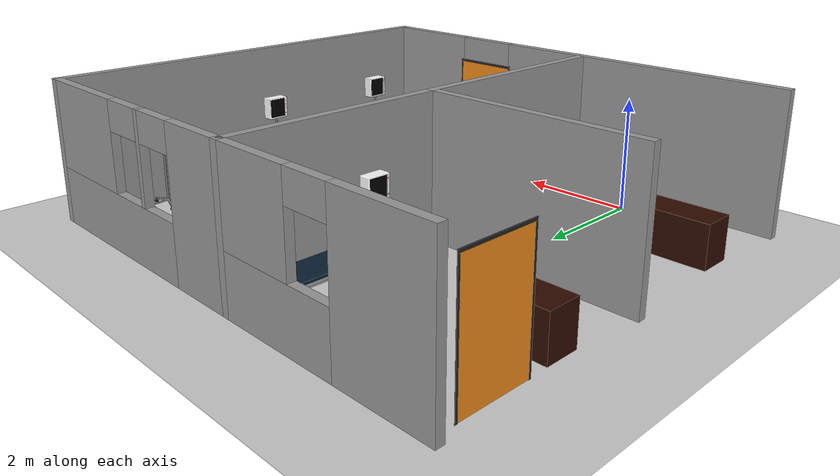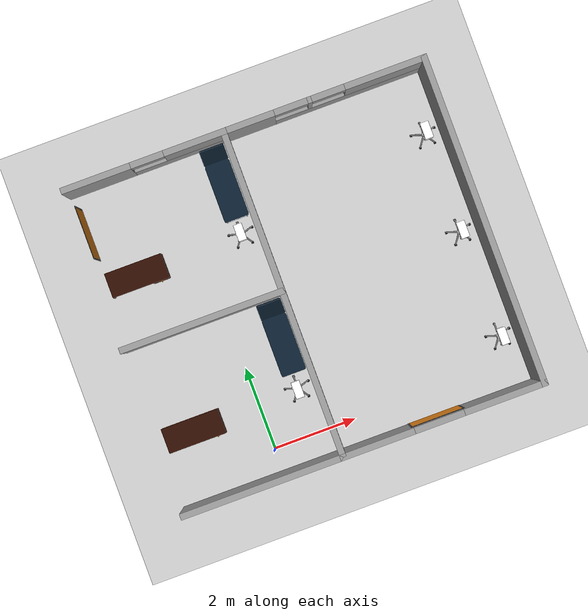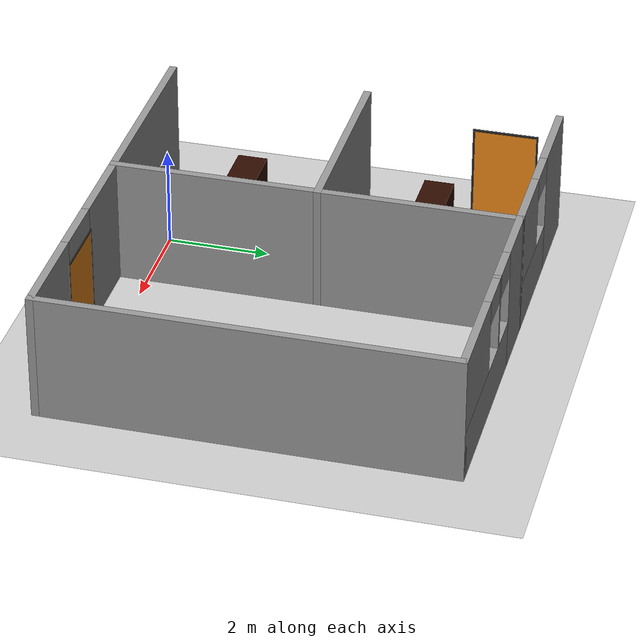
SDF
<sdf version="1.6">
 <world name="default">
  <model name="ground_plane">
   <static>1</static>
   <link name="link">
    <collision name="collision">
     <geometry><plane><normal>0 0 1</normal><size>100 100</size></plane></geometry>
     <surface><friction><ode><mu>100</mu><mu2>50</mu2></ode></friction></surface>
    </collision>
    <visual name="visual">
     <cast_shadows>0</cast_shadows>
     <geometry><plane><normal>0 0 1</normal><size>100 100</size></plane></geometry>
     <material>
      <script><uri>file://media/materials/scripts/gazebo.material</uri><name>Gazebo/Grey</name></script>
     </material>
    </visual>
   </link>
  </model>
  <model name="vitals_monitor_clone_2_clone_1">
   <static>1</static>
   <link name="vitals_monitor">
    <collision name="vitals_monitor">
     <geometry><mesh><uri>model://vitals_monitor/meshes/model.dae</uri></mesh></geometry>
    </collision>
    <visual name="vitals_monitor_mesh">
     <geometry><mesh><uri>model://vitals_monitor/meshes/model.dae</uri></mesh></geometry>
    </visual>
   </link>
   <pose>5.84678 0.669607 0 0 0 -1.5708</pose>
  </model>
  <model name="vitals_monitor_clone_2_clone_2">
   <static>1</static>
   <link name="vitals_monitor">
    <collision name="vitals_monitor">
     <geometry><mesh><uri>model://vitals_monitor/meshes/model.dae</uri></mesh></geometry>
    </collision>
    <visual name="vitals_monitor_mesh">
     <geometry><mesh><uri>model://vitals_monitor/meshes/model.dae</uri></mesh></geometry>
    </visual>
   </link>
   <pose>5.82137 3.28498 0 0 0 -1.5708</pose>
  </model>
  <model name="vitals_monitor_clone_2_clone_3">
   <static>1</static>
   <link name="vitals_monitor">
    <collision name="vitals_monitor">
     <geometry><mesh><uri>model://vitals_monitor/meshes/model.dae</uri></mesh></geometry>
    </collision>
    <visual name="vitals_monitor_mesh">
     <geometry><mesh><uri>model://vitals_monitor/meshes/model.dae</uri></mesh></geometry>
    </visual>
   </link>
   <pose>5.83292 5.71579 0 0 0 -1.5708</pose>
  </model>
  <model name="three_drawer_desk">
   <static>1</static>
   <link name="three_drawer_desk">
    <collision name="three_drawer_desk">
     <geometry><mesh><uri>model://three_drawer_desk/meshes/model.dae</uri></mesh></geometry>
    </collision>
    <visual name="three_drawer_desk_mesh">
     <geometry><mesh><uri>model://three_drawer_desk/meshes/model.dae</uri></mesh></geometry>
    </visual>
   </link>
   <pose>-1.618 4.9115 0 0 -0 3.14159</pose>
  </model>
  <model name="three_drawer_desk_clone">
   <static>1</static>
   <link name="three_drawer_desk">
    <collision name="three_drawer_desk">
     <geometry><mesh><uri>model://three_drawer_desk/meshes/model.dae</uri></mesh></geometry>
    </collision>
    <visual name="three_drawer_desk_mesh">
     <geometry><mesh><uri>model://three_drawer_desk/meshes/model.dae</uri></mesh></geometry>
    </visual>
   </link>
   <pose>-1.62836 1.05851 0 0 -0 3.14159</pose>
  </model>
  <model name="medical_couch">
   <static>1</static>
   <link name="medical_couch">
    <collision name="medical_couch">
     <geometry><mesh><uri>model://medical_couch/meshes/model.dae</uri></mesh></geometry>
    </collision>
    <visual name="medical_couch_mesh">
     <geometry><mesh><uri>model://medical_couch/meshes/model.dae</uri></mesh></geometry>
    </visual>
   </link>
   <pose>1.03141 6.05659 0 0 -0 3.14159</pose>
  </model>
  <model name="medical_couch_clone">
   <static>1</static>
   <link name="medical_couch">
    <collision name="medical_couch">
     <geometry><mesh><uri>model://medical_couch/meshes/model.dae</uri></mesh></geometry>
    </collision>
    <visual name="medical_couch_mesh">
     <geometry><mesh><uri>model://medical_couch/meshes/model.dae</uri></mesh></geometry>
    </visual>
   </link>
   <pose>1.03641 2.21268 0 0 -0 3.14159</pose>
  </model>
  <model name="vitals_monitor_clone_2_clone_3_clone">
   <static>1</static>
   <link name="vitals_monitor">
    <collision name="vitals_monitor">
     <geometry><mesh><uri>model://vitals_monitor/meshes/model.dae</uri></mesh></geometry>
    </collision>
    <visual name="vitals_monitor_mesh">
     <geometry><mesh><uri>model://vitals_monitor/meshes/model.dae</uri></mesh></geometry>
    </visual>
   </link>
   <pose>0.995211 4.99575 0 0 0 -1.5708</pose>
  </model>
  <model name="vitals_monitor_clone_2_clone_3_clone_0">
   <static>1</static>
   <link name="vitals_monitor">
    <collision name="vitals_monitor">
     <geometry><mesh><uri>model://vitals_monitor/meshes/model.dae</uri></mesh></geometry>
    </collision>
    <visual name="vitals_monitor_mesh">
     <geometry><mesh><uri>model://vitals_monitor/meshes/model.dae</uri></mesh></geometry>
    </visual>
   </link>
   <pose>0.989105 1.14447 0 0 0 -1.5708</pose>
  </model>
  <model name="room_door_clone">
   <link name="base_link">
    <inertial>
     <pose>0 0 1.00051 0 -0 0</pose>
     <mass>2001</mass>
     <inertia><ixx>797.85</ixx><ixy>0</ixy><ixz>0</ixz><iyy>4.0501</iyy><iyz>0</iyz><izz>796.8</izz></inertia>
    </inertial>
    <collision name="base_link_fixed_joint_lump__top_post_collision">
     <pose>0 0 2.025 0 -0 0</pose>
     <geometry><box><size>0.01 1.3 0.05</size></box></geometry>
    </collision>
    <collision name="base_link_fixed_joint_lump__left_post_collision_1">
     <pose>0 -0.63 1 0 -0 0</pose>
     <geometry><box><size>0.01 0.04 2</size></box></geometry>
    </collision>
    <collision name="base_link_fixed_joint_lump__right_post_collision_2">
     <pose>0 0.63 1 0 -0 0</pose>
     <geometry><box><size>0.01 0.04 2</size></box></geometry>
    </collision>
    <visual name="base_link_fixed_joint_lump__top_post_visual">
     <pose>0 0 2.025 0 -0 0</pose>
     <geometry><box><size>0.01 1.3 0.05</size></box></geometry>
     <material>
      <script><name>Gazebo/Black</name><uri>file://media/materials/scripts/gazebo.material</uri></script>
     </material>
    </visual>
    <visual name="base_link_fixed_joint_lump__left_post_visual_1">
     <pose>0 -0.63 1 0 -0 0</pose>
     <geometry><box><size>0.01 0.04 2</size></box></geometry>
     <material>
      <script><name>Gazebo/Black</name><uri>file://media/materials/scripts/gazebo.material</uri></script>
     </material>
    </visual>
    <visual name="base_link_fixed_joint_lump__right_post_visual_2">
     <pose>0 0.63 1 0 -0 0</pose>
     <geometry><box><size>0.01 0.04 2</size></box></geometry>
     <material>
      <script><name>Gazebo/Black</name><uri>file://media/materials/scripts/gazebo.material</uri></script>
     </material>
    </visual>
   </link>
   <link name="door_front">
    <pose>0.005 0.61 1 0 -0 0</pose>
    <inertial>
     <mass>1</mass>
     <inertia><ixx>1</ixx><ixy>0</ixy><ixz>0</ixz><iyy>1</iyy><iyz>0</iyz><izz>1</izz></inertia>
    </inertial>
    <collision name="door_front_collision">
     <pose>-0.005 -0.61 0.005 0 -0 0</pose>
     <geometry><box><size>0.01 1.22 1.99</size></box></geometry>
    </collision>
    <visual name="door_front_visual">
     <pose>-0.005 -0.61 0.005 0 -0 0</pose>
     <geometry><box><size>0.01 1.22 1.99</size></box></geometry>
     <material>
      <script><name>Gazebo/Orange</name><uri>file://media/materials/scripts/gazebo.material</uri></script>
     </material>
    </visual>
   </link>
   <joint name="door_front_to_right_post" type="revolute">
    <child>door_front</child>
    <parent>base_link</parent>
    <axis>
     <xyz>0 0 1</xyz>
     <limit><lower>0</lower><upper>3.14</upper><effort>1000</effort><velocity>100</velocity></limit>
     <dynamics>
      <damping>0.5</damping>
      <friction>0</friction>
      <spring_reference>0</spring_reference>
      <spring_stiffness>0</spring_stiffness>
     </dynamics>
     <use_parent_model_frame>0</use_parent_model_frame>
    </axis>
   </joint>
   <pose>-2.33298 6.2017 -3e-06 -5e-06 1e-06 -0.000148</pose>
  </model>
  <model name="room_door_3_clone_clone_0_clone_0">
   <link name="base_link">
    <inertial>
     <pose>0 0 1.00051 0 -0 0</pose>
     <mass>2001</mass>
     <inertia><ixx>797.85</ixx><ixy>0</ixy><ixz>0</ixz><iyy>4.0501</iyy><iyz>0</iyz><izz>796.8</izz></inertia>
    </inertial>
    <collision name="base_link_fixed_joint_lump__top_post_collision">
     <pose>0 0 2.025 0 -0 0</pose>
     <geometry><box><size>0.01 1.3 0.05</size></box></geometry>
    </collision>
    <collision name="base_link_fixed_joint_lump__left_post_collision_1">
     <pose>0 -0.63 1 0 -0 0</pose>
     <geometry><box><size>0.01 0.04 2</size></box></geometry>
    </collision>
    <collision name="base_link_fixed_joint_lump__right_post_collision_2">
     <pose>0 0.63 1 0 -0 0</pose>
     <geometry><box><size>0.01 0.04 2</size></box></geometry>
    </collision>
    <visual name="base_link_fixed_joint_lump__top_post_visual">
     <pose>0 0 2.025 0 -0 0</pose>
     <geometry><box><size>0.01 1.3 0.05</size></box></geometry>
     <material>
      <script><name>Gazebo/Black</name><uri>file://media/materials/scripts/gazebo.material</uri></script>
     </material>
    </visual>
    <visual name="base_link_fixed_joint_lump__left_post_visual_1">
     <pose>0 -0.63 1 0 -0 0</pose>
     <geometry><box><size>0.01 0.04 2</size></box></geometry>
     <material>
      <script><name>Gazebo/Black</name><uri>file://media/materials/scripts/gazebo.material</uri></script>
     </material>
    </visual>
    <visual name="base_link_fixed_joint_lump__right_post_visual_2">
     <pose>0 0.63 1 0 -0 0</pose>
     <geometry><box><size>0.01 0.04 2</size></box></geometry>
     <material>
      <script><name>Gazebo/Black</name><uri>file://media/materials/scripts/gazebo.material</uri></script>
     </material>
    </visual>
   </link>
   <link name="door_front">
    <pose>0.005 -0.61 1 0 -0 0</pose>
    <inertial>
     <mass>1</mass>
     <inertia><ixx>1</ixx><ixy>0</ixy><ixz>0</ixz><iyy>1</iyy><iyz>0</iyz><izz>1</izz></inertia>
    </inertial>
    <collision name="door_front_collision">
     <pose>-0.005 0.61 0.005 0 -0 0</pose>
     <geometry><box><size>0.01 1.22 1.99</size></box></geometry>
    </collision>
    <visual name="door_front_visual">
     <pose>-0.005 0.61 0.005 0 -0 0</pose>
     <geometry><box><size>0.01 1.22 1.99</size></box></geometry>
     <material>
      <script><name>Gazebo/Orange</name><uri>file://media/materials/scripts/gazebo.material</uri></script>
     </material>
    </visual>
   </link>
   <joint name="door_front_to_left_post" type="revolute">
    <child>door_front</child>
    <parent>base_link</parent>
    <axis>
     <xyz>0 0 1</xyz>
     <limit><lower>-3.14</lower><upper>0</upper><effort>1000</effort><velocity>100</velocity></limit>
     <dynamics>
      <damping>0.5</damping>
      <friction>0</friction>
      <spring_reference>0</spring_reference>
      <spring_stiffness>0</spring_stiffness>
     </dynamics>
     <use_parent_model_frame>0</use_parent_model_frame>
    </axis>
   </joint>
   <pose>3.76836 -0.540279 -1e-06 1e-06 -1e-06 1.57084</pose>
  </model>
  <model name="hospital_walls">
   <link name="Wall_10">
    <pose>1.425 5.35 0 0 0 -1.5708</pose>
    <visual name="Wall_10_Visual">
     <pose>0 0 1.25 0 -0 0</pose>
     <geometry><box><size>4 0.15 2.5</size></box></geometry>
     <material>
      <script><uri>file://media/materials/scripts/gazebo.material</uri><name>Gazebo/Grey</name></script>
      <ambient>1 1 1 1</ambient>
      <shader type="pixel"/>
     </material>
     <meta><layer>0</layer></meta>
    </visual>
    <collision name="Wall_10_Collision">
     <pose>0 0 1.25 0 -0 0</pose>
     <geometry><box><size>4 0.15 2.5</size></box></geometry>
     <surface>
      <friction>
       <ode><mu>1</mu><mu2>1</mu2><fdir1>0 0 0</fdir1><slip1>0</slip1><slip2>0</slip2></ode>
       <torsional>
        <coefficient>1</coefficient>
        <patch_radius>0</patch_radius>
        <surface_radius>0</surface_radius>
        <use_patch_radius>1</use_patch_radius>
        <ode><slip>0</slip></ode>
       </torsional>
      </friction>
      <bounce><restitution_coefficient>0</restitution_coefficient><threshold>1e+06</threshold></bounce>
      <contact>
       <collide_without_contact>0</collide_without_contact>
       <collide_without_contact_bitmask>1</collide_without_contact_bitmask>
       <collide_bitmask>1</collide_bitmask>
       <ode>
        <soft_cfm>0</soft_cfm>
        <soft_erp>0.2</soft_erp>
        <kp>1e+13</kp>
        <kd>1</kd>
        <max_vel>0.01</max_vel>
        <min_depth>0</min_depth>
       </ode>
       <bullet>
        <split_impulse>1</split_impulse>
        <split_impulse_penetration_threshold>-0.01</split_impulse_penetration_threshold>
        <soft_cfm>0</soft_cfm>
        <soft_erp>0.2</soft_erp>
        <kp>1e+13</kp>
        <kd>1</kd>
       </bullet>
      </contact>
     </surface>
    </collision>
   </link>
   <link name="Wall_11">
    <pose>-0.5 3.425 0 0 -0 3.14159</pose>
    <visual name="Wall_11_Visual">
     <pose>0 0 1.25 0 -0 0</pose>
     <geometry><box><size>4 0.15 2.5</size></box></geometry>
     <material>
      <script><uri>file://media/materials/scripts/gazebo.material</uri><name>Gazebo/Grey</name></script>
      <ambient>1 1 1 1</ambient>
      <shader type="pixel"/>
     </material>
     <meta><layer>0</layer></meta>
    </visual>
    <collision name="Wall_11_Collision">
     <pose>0 0 1.25 0 -0 0</pose>
     <geometry><box><size>4 0.15 2.5</size></box></geometry>
     <surface>
      <friction>
       <ode><mu>1</mu><mu2>1</mu2><fdir1>0 0 0</fdir1><slip1>0</slip1><slip2>0</slip2></ode>
       <torsional>
        <coefficient>1</coefficient>
        <patch_radius>0</patch_radius>
        <surface_radius>0</surface_radius>
        <use_patch_radius>1</use_patch_radius>
        <ode><slip>0</slip></ode>
       </torsional>
      </friction>
      <bounce><restitution_coefficient>0</restitution_coefficient><threshold>1e+06</threshold></bounce>
      <contact>
       <collide_without_contact>0</collide_without_contact>
       <collide_without_contact_bitmask>1</collide_without_contact_bitmask>
       <collide_bitmask>1</collide_bitmask>
       <ode>
        <soft_cfm>0</soft_cfm>
        <soft_erp>0.2</soft_erp>
        <kp>1e+13</kp>
        <kd>1</kd>
        <max_vel>0.01</max_vel>
        <min_depth>0</min_depth>
       </ode>
       <bullet>
        <split_impulse>1</split_impulse>
        <split_impulse_penetration_threshold>-0.01</split_impulse_penetration_threshold>
        <soft_cfm>0</soft_cfm>
        <soft_erp>0.2</soft_erp>
        <kp>1e+13</kp>
        <kd>1</kd>
       </bullet>
      </contact>
     </surface>
    </collision>
   </link>
   <link name="Wall_15">
    <pose>3.85 7.275 0 0 -0 0</pose>
    <inertial>
     <mass>1</mass>
     <inertia><ixx>1</ixx><ixy>0</ixy><ixz>0</ixz><iyy>1</iyy><iyz>0</iyz><izz>1</izz></inertia>
    </inertial>
    <visual name="Wall_15_Visual_5">
     <pose>0.1 0 2.25 0 -0 0</pose>
     <geometry><box><size>0.8 0.15 0.5</size></box></geometry>
     <material>
      <script><uri>file://media/materials/scripts/gazebo.material</uri><name>Gazebo/Grey</name></script>
      <ambient>1 1 1 1</ambient>
      <shader type="vertex"><normal_map>__default__</normal_map></shader>
      <diffuse>0.7 0.7 0.7 1</diffuse>
      <specular>0.01 0.01 0.01 1</specular>
      <emissive>0 0 0 1</emissive>
     </material>
     <meta><layer>0</layer></meta>
    </visual>
    <visual name="Wall_15_Visual_4">
     <pose>-0.8 0 2.25 0 -0 0</pose>
     <geometry><box><size>0.8 0.15 0.5</size></box></geometry>
     <material>
      <script><uri>file://media/materials/scripts/gazebo.material</uri><name>Gazebo/Grey</name></script>
      <ambient>1 1 1 1</ambient>
      <shader type="vertex"><normal_map>__default__</normal_map></shader>
      <diffuse>0.7 0.7 0.7 1</diffuse>
      <specular>0.01 0.01 0.01 1</specular>
      <emissive>0 0 0 1</emissive>
     </material>
     <meta><layer>0</layer></meta>
    </visual>
    <visual name="Wall_15_Visual_0">
     <pose>-1.85 0 1.25 0 -0 0</pose>
     <geometry><box><size>1.3 0.15 2.5</size></box></geometry>
     <material>
      <script><uri>file://media/materials/scripts/gazebo.material</uri><name>Gazebo/Grey</name></script>
      <ambient>1 1 1 1</ambient>
      <shader type="vertex"><normal_map>__default__</normal_map></shader>
      <diffuse>0.7 0.7 0.7 1</diffuse>
      <specular>0.01 0.01 0.01 1</specular>
      <emissive>0 0 0 1</emissive>
     </material>
     <meta><layer>0</layer></meta>
    </visual>
    <visual name="Wall_15_Visual_1">
     <pose>0.65 0 0.5 0 -0 0</pose>
     <geometry><box><size>3.7 0.15 1</size></box></geometry>
     <material>
      <script><uri>file://media/materials/scripts/gazebo.material</uri><name>Gazebo/Grey</name></script>
      <ambient>1 1 1 1</ambient>
      <shader type="vertex"><normal_map>__default__</normal_map></shader>
      <diffuse>0.7 0.7 0.7 1</diffuse>
      <specular>0.01 0.01 0.01 1</specular>
      <emissive>0 0 0 1</emissive>
     </material>
     <meta><layer>0</layer></meta>
    </visual>
    <visual name="Wall_15_Visual_2">
     <pose>-0.35 0 1.75 0 -0 0</pose>
     <geometry><box><size>0.1 0.15 1.5</size></box></geometry>
     <material>
      <script><uri>file://media/materials/scripts/gazebo.material</uri><name>Gazebo/Grey</name></script>
      <ambient>1 1 1 1</ambient>
      <shader type="vertex"><normal_map>__default__</normal_map></shader>
      <diffuse>0.7 0.7 0.7 1</diffuse>
      <specular>0.01 0.01 0.01 1</specular>
      <emissive>0 0 0 1</emissive>
     </material>
     <meta><layer>0</layer></meta>
    </visual>
    <visual name="Wall_15_Visual_3">
     <pose>1.5 0 1.75 0 -0 0</pose>
     <geometry><box><size>2 0.15 1.5</size></box></geometry>
     <material>
      <script><uri>file://media/materials/scripts/gazebo.material</uri><name>Gazebo/Grey</name></script>
      <ambient>1 1 1 1</ambient>
      <shader type="vertex"><normal_map>__default__</normal_map></shader>
      <diffuse>0.7 0.7 0.7 1</diffuse>
      <specular>0.01 0.01 0.01 1</specular>
      <emissive>0 0 0 1</emissive>
     </material>
     <meta><layer>0</layer></meta>
    </visual>
    <collision name="Wall_15_Collision_1">
     <pose>0.65 0 0.5 0 -0 0</pose>
     <geometry><box><size>3.7 0.15 1</size></box></geometry>
     <surface>
      <friction>
       <ode><mu>1</mu><mu2>1</mu2><fdir1>0 0 0</fdir1><slip1>0</slip1><slip2>0</slip2></ode>
       <torsional>
        <coefficient>1</coefficient>
        <patch_radius>0</patch_radius>
        <surface_radius>0</surface_radius>
        <use_patch_radius>1</use_patch_radius>
        <ode><slip>0</slip></ode>
       </torsional>
      </friction>
      <bounce><restitution_coefficient>0</restitution_coefficient><threshold>1e+06</threshold></bounce>
      <contact>
       <collide_without_contact>0</collide_without_contact>
       <collide_without_contact_bitmask>1</collide_without_contact_bitmask>
       <collide_bitmask>1</collide_bitmask>
       <ode>
        <soft_cfm>0</soft_cfm>
        <soft_erp>0.2</soft_erp>
        <kp>1e+13</kp>
        <kd>1</kd>
        <max_vel>0.01</max_vel>
        <min_depth>0</min_depth>
       </ode>
       <bullet>
        <split_impulse>1</split_impulse>
        <split_impulse_penetration_threshold>-0.01</split_impulse_penetration_threshold>
        <soft_cfm>0</soft_cfm>
        <soft_erp>0.2</soft_erp>
        <kp>1e+13</kp>
        <kd>1</kd>
       </bullet>
      </contact>
     </surface>
    </collision>
    <collision name="Wall_15_Collision_3">
     <pose>1.5 0 1.75 0 -0 0</pose>
     <geometry><box><size>2 0.15 1.5</size></box></geometry>
     <surface>
      <friction>
       <ode><mu>1</mu><mu2>1</mu2><fdir1>0 0 0</fdir1><slip1>0</slip1><slip2>0</slip2></ode>
       <torsional>
        <coefficient>1</coefficient>
        <patch_radius>0</patch_radius>
        <surface_radius>0</surface_radius>
        <use_patch_radius>1</use_patch_radius>
        <ode><slip>0</slip></ode>
       </torsional>
      </friction>
      <bounce><restitution_coefficient>0</restitution_coefficient><threshold>1e+06</threshold></bounce>
      <contact>
       <collide_without_contact>0</collide_without_contact>
       <collide_without_contact_bitmask>1</collide_without_contact_bitmask>
       <collide_bitmask>1</collide_bitmask>
       <ode>
        <soft_cfm>0</soft_cfm>
        <soft_erp>0.2</soft_erp>
        <kp>1e+13</kp>
        <kd>1</kd>
        <max_vel>0.01</max_vel>
        <min_depth>0</min_depth>
       </ode>
       <bullet>
        <split_impulse>1</split_impulse>
        <split_impulse_penetration_threshold>-0.01</split_impulse_penetration_threshold>
        <soft_cfm>0</soft_cfm>
        <soft_erp>0.2</soft_erp>
        <kp>1e+13</kp>
        <kd>1</kd>
       </bullet>
      </contact>
     </surface>
    </collision>
    <collision name="Wall_15_Collision_0">
     <pose>-1.85 0 1.25 0 -0 0</pose>
     <geometry><box><size>1.3 0.15 2.5</size></box></geometry>
     <surface>
      <friction>
       <ode><mu>1</mu><mu2>1</mu2><fdir1>0 0 0</fdir1><slip1>0</slip1><slip2>0</slip2></ode>
       <torsional>
        <coefficient>1</coefficient>
        <patch_radius>0</patch_radius>
        <surface_radius>0</surface_radius>
        <use_patch_radius>1</use_patch_radius>
        <ode><slip>0</slip></ode>
       </torsional>
      </friction>
      <bounce><restitution_coefficient>0</restitution_coefficient><threshold>1e+06</threshold></bounce>
      <contact>
       <collide_without_contact>0</collide_without_contact>
       <collide_without_contact_bitmask>1</collide_without_contact_bitmask>
       <collide_bitmask>1</collide_bitmask>
       <ode>
        <soft_cfm>0</soft_cfm>
        <soft_erp>0.2</soft_erp>
        <kp>1e+13</kp>
        <kd>1</kd>
        <max_vel>0.01</max_vel>
        <min_depth>0</min_depth>
       </ode>
       <bullet>
        <split_impulse>1</split_impulse>
        <split_impulse_penetration_threshold>-0.01</split_impulse_penetration_threshold>
        <soft_cfm>0</soft_cfm>
        <soft_erp>0.2</soft_erp>
        <kp>1e+13</kp>
        <kd>1</kd>
       </bullet>
      </contact>
     </surface>
    </collision>
    <collision name="Wall_15_Collision_5">
     <pose>0.1 0 2.25 0 -0 0</pose>
     <geometry><box><size>0.8 0.15 0.5</size></box></geometry>
     <surface>
      <friction>
       <ode><mu>1</mu><mu2>1</mu2><fdir1>0 0 0</fdir1><slip1>0</slip1><slip2>0</slip2></ode>
       <torsional>
        <coefficient>1</coefficient>
        <patch_radius>0</patch_radius>
        <surface_radius>0</surface_radius>
        <use_patch_radius>1</use_patch_radius>
        <ode><slip>0</slip></ode>
       </torsional>
      </friction>
      <bounce><restitution_coefficient>0</restitution_coefficient><threshold>1e+06</threshold></bounce>
      <contact>
       <collide_without_contact>0</collide_without_contact>
       <collide_without_contact_bitmask>1</collide_without_contact_bitmask>
       <collide_bitmask>1</collide_bitmask>
       <ode>
        <soft_cfm>0</soft_cfm>
        <soft_erp>0.2</soft_erp>
        <kp>1e+13</kp>
        <kd>1</kd>
        <max_vel>0.01</max_vel>
        <min_depth>0</min_depth>
       </ode>
       <bullet>
        <split_impulse>1</split_impulse>
        <split_impulse_penetration_threshold>-0.01</split_impulse_penetration_threshold>
        <soft_cfm>0</soft_cfm>
        <soft_erp>0.2</soft_erp>
        <kp>1e+13</kp>
        <kd>1</kd>
       </bullet>
      </contact>
     </surface>
    </collision>
    <collision name="Wall_15_Collision_2">
     <pose>-0.35 0 1.75 0 -0 0</pose>
     <geometry><box><size>0.1 0.15 1.5</size></box></geometry>
     <surface>
      <friction>
       <ode><mu>1</mu><mu2>1</mu2><fdir1>0 0 0</fdir1><slip1>0</slip1><slip2>0</slip2></ode>
       <torsional>
        <coefficient>1</coefficient>
        <patch_radius>0</patch_radius>
        <surface_radius>0</surface_radius>
        <use_patch_radius>1</use_patch_radius>
        <ode><slip>0</slip></ode>
       </torsional>
      </friction>
      <bounce><restitution_coefficient>0</restitution_coefficient><threshold>1e+06</threshold></bounce>
      <contact>
       <collide_without_contact>0</collide_without_contact>
       <collide_without_contact_bitmask>1</collide_without_contact_bitmask>
       <collide_bitmask>1</collide_bitmask>
       <ode>
        <soft_cfm>0</soft_cfm>
        <soft_erp>0.2</soft_erp>
        <kp>1e+13</kp>
        <kd>1</kd>
        <max_vel>0.01</max_vel>
        <min_depth>0</min_depth>
       </ode>
       <bullet>
        <split_impulse>1</split_impulse>
        <split_impulse_penetration_threshold>-0.01</split_impulse_penetration_threshold>
        <soft_cfm>0</soft_cfm>
        <soft_erp>0.2</soft_erp>
        <kp>1e+13</kp>
        <kd>1</kd>
       </bullet>
      </contact>
     </surface>
    </collision>
    <collision name="Wall_15_Collision_4">
     <pose>-0.8 0 2.25 0 -0 0</pose>
     <geometry><box><size>0.8 0.15 0.5</size></box></geometry>
     <surface>
      <friction>
       <ode><mu>1</mu><mu2>1</mu2><fdir1>0 0 0</fdir1><slip1>0</slip1><slip2>0</slip2></ode>
       <torsional>
        <coefficient>1</coefficient>
        <patch_radius>0</patch_radius>
        <surface_radius>0</surface_radius>
        <use_patch_radius>1</use_patch_radius>
        <ode><slip>0</slip></ode>
       </torsional>
      </friction>
      <bounce><restitution_coefficient>0</restitution_coefficient><threshold>1e+06</threshold></bounce>
      <contact>
       <collide_without_contact>0</collide_without_contact>
       <collide_without_contact_bitmask>1</collide_without_contact_bitmask>
       <collide_bitmask>1</collide_bitmask>
       <ode>
        <soft_cfm>0</soft_cfm>
        <soft_erp>0.2</soft_erp>
        <kp>1e+13</kp>
        <kd>1</kd>
        <max_vel>0.01</max_vel>
        <min_depth>0</min_depth>
       </ode>
       <bullet>
        <split_impulse>1</split_impulse>
        <split_impulse_penetration_threshold>-0.01</split_impulse_penetration_threshold>
        <soft_cfm>0</soft_cfm>
        <soft_erp>0.2</soft_erp>
        <kp>1e+13</kp>
        <kd>1</kd>
       </bullet>
      </contact>
     </surface>
    </collision>
   </link>
   <link name="Wall_16">
    <pose>6.275 3.35 0 0 0 -1.5708</pose>
    <visual name="Wall_16_Visual">
     <pose>0 0 1.25 0 -0 0</pose>
     <geometry><box><size>8 0.15 2.5</size></box></geometry>
     <material>
      <script><uri>file://media/materials/scripts/gazebo.material</uri><name>Gazebo/Grey</name></script>
      <ambient>1 1 1 1</ambient>
      <shader type="pixel"/>
     </material>
     <meta><layer>0</layer></meta>
    </visual>
    <collision name="Wall_16_Collision">
     <pose>0 0 1.25 0 -0 0</pose>
     <geometry><box><size>8 0.15 2.5</size></box></geometry>
     <surface>
      <friction>
       <ode><mu>1</mu><mu2>1</mu2><fdir1>0 0 0</fdir1><slip1>0</slip1><slip2>0</slip2></ode>
       <torsional>
        <coefficient>1</coefficient>
        <patch_radius>0</patch_radius>
        <surface_radius>0</surface_radius>
        <use_patch_radius>1</use_patch_radius>
        <ode><slip>0</slip></ode>
       </torsional>
      </friction>
      <bounce><restitution_coefficient>0</restitution_coefficient><threshold>1e+06</threshold></bounce>
      <contact>
       <collide_without_contact>0</collide_without_contact>
       <collide_without_contact_bitmask>1</collide_without_contact_bitmask>
       <collide_bitmask>1</collide_bitmask>
       <ode>
        <soft_cfm>0</soft_cfm>
        <soft_erp>0.2</soft_erp>
        <kp>1e+13</kp>
        <kd>1</kd>
        <max_vel>0.01</max_vel>
        <min_depth>0</min_depth>
       </ode>
       <bullet>
        <split_impulse>1</split_impulse>
        <split_impulse_penetration_threshold>-0.01</split_impulse_penetration_threshold>
        <soft_cfm>0</soft_cfm>
        <soft_erp>0.2</soft_erp>
        <kp>1e+13</kp>
        <kd>1</kd>
       </bullet>
      </contact>
     </surface>
    </collision>
   </link>
   <link name="Wall_17">
    <pose>3.85 -0.575 0 0 -0 3.14159</pose>
    <visual name="Wall_17_Visual_0">
     <pose>-1.5 0 1.25 0 -0 0</pose>
     <geometry><box><size>2 0.15 2.5</size></box></geometry>
     <material>
      <script><uri>file://media/materials/scripts/gazebo.material</uri><name>Gazebo/Grey</name></script>
      <ambient>1 1 1 1</ambient>
      <shader type="pixel"/>
     </material>
     <meta><layer>0</layer></meta>
    </visual>
    <visual name="Wall_17_Visual_1">
     <pose>1.6 0 1.25 0 -0 0</pose>
     <geometry><box><size>1.8 0.15 2.5</size></box></geometry>
     <material>
      <script><uri>file://media/materials/scripts/gazebo.material</uri><name>Gazebo/Grey</name></script>
      <ambient>1 1 1 1</ambient>
      <shader type="pixel"/>
     </material>
     <meta><layer>0</layer></meta>
    </visual>
    <visual name="Wall_17_Visual_2">
     <pose>0.1 0 2.25 0 -0 0</pose>
     <geometry><box><size>1.2 0.15 0.5</size></box></geometry>
     <material>
      <script><uri>file://media/materials/scripts/gazebo.material</uri><name>Gazebo/Grey</name></script>
      <ambient>1 1 1 1</ambient>
      <shader type="pixel"/>
     </material>
     <meta><layer>0</layer></meta>
    </visual>
    <collision name="Wall_17_Collision_1">
     <pose>1.6 0 1.25 0 -0 0</pose>
     <geometry><box><size>1.8 0.15 2.5</size></box></geometry>
     <surface>
      <friction>
       <ode><mu>1</mu><mu2>1</mu2><fdir1>0 0 0</fdir1><slip1>0</slip1><slip2>0</slip2></ode>
       <torsional>
        <coefficient>1</coefficient>
        <patch_radius>0</patch_radius>
        <surface_radius>0</surface_radius>
        <use_patch_radius>1</use_patch_radius>
        <ode><slip>0</slip></ode>
       </torsional>
      </friction>
      <bounce><restitution_coefficient>0</restitution_coefficient><threshold>1e+06</threshold></bounce>
      <contact>
       <collide_without_contact>0</collide_without_contact>
       <collide_without_contact_bitmask>1</collide_without_contact_bitmask>
       <collide_bitmask>1</collide_bitmask>
       <ode>
        <soft_cfm>0</soft_cfm>
        <soft_erp>0.2</soft_erp>
        <kp>1e+13</kp>
        <kd>1</kd>
        <max_vel>0.01</max_vel>
        <min_depth>0</min_depth>
       </ode>
       <bullet>
        <split_impulse>1</split_impulse>
        <split_impulse_penetration_threshold>-0.01</split_impulse_penetration_threshold>
        <soft_cfm>0</soft_cfm>
        <soft_erp>0.2</soft_erp>
        <kp>1e+13</kp>
        <kd>1</kd>
       </bullet>
      </contact>
     </surface>
    </collision>
    <collision name="Wall_17_Collision_0">
     <pose>-1.5 0 1.25 0 -0 0</pose>
     <geometry><box><size>2 0.15 2.5</size></box></geometry>
     <surface>
      <friction>
       <ode><mu>1</mu><mu2>1</mu2><fdir1>0 0 0</fdir1><slip1>0</slip1><slip2>0</slip2></ode>
       <torsional>
        <coefficient>1</coefficient>
        <patch_radius>0</patch_radius>
        <surface_radius>0</surface_radius>
        <use_patch_radius>1</use_patch_radius>
        <ode><slip>0</slip></ode>
       </torsional>
      </friction>
      <bounce><restitution_coefficient>0</restitution_coefficient><threshold>1e+06</threshold></bounce>
      <contact>
       <collide_without_contact>0</collide_without_contact>
       <collide_without_contact_bitmask>1</collide_without_contact_bitmask>
       <collide_bitmask>1</collide_bitmask>
       <ode>
        <soft_cfm>0</soft_cfm>
        <soft_erp>0.2</soft_erp>
        <kp>1e+13</kp>
        <kd>1</kd>
        <max_vel>0.01</max_vel>
        <min_depth>0</min_depth>
       </ode>
       <bullet>
        <split_impulse>1</split_impulse>
        <split_impulse_penetration_threshold>-0.01</split_impulse_penetration_threshold>
        <soft_cfm>0</soft_cfm>
        <soft_erp>0.2</soft_erp>
        <kp>1e+13</kp>
        <kd>1</kd>
       </bullet>
      </contact>
     </surface>
    </collision>
    <collision name="Wall_17_Collision_2">
     <pose>0.1 0 2.25 0 -0 0</pose>
     <geometry><box><size>1.2 0.15 0.5</size></box></geometry>
     <surface>
      <friction>
       <ode><mu>1</mu><mu2>1</mu2><fdir1>0 0 0</fdir1><slip1>0</slip1><slip2>0</slip2></ode>
       <torsional>
        <coefficient>1</coefficient>
        <patch_radius>0</patch_radius>
        <surface_radius>0</surface_radius>
        <use_patch_radius>1</use_patch_radius>
        <ode><slip>0</slip></ode>
       </torsional>
      </friction>
      <bounce><restitution_coefficient>0</restitution_coefficient><threshold>1e+06</threshold></bounce>
      <contact>
       <collide_without_contact>0</collide_without_contact>
       <collide_without_contact_bitmask>1</collide_without_contact_bitmask>
       <collide_bitmask>1</collide_bitmask>
       <ode>
        <soft_cfm>0</soft_cfm>
        <soft_erp>0.2</soft_erp>
        <kp>1e+13</kp>
        <kd>1</kd>
        <max_vel>0.01</max_vel>
        <min_depth>0</min_depth>
       </ode>
       <bullet>
        <split_impulse>1</split_impulse>
        <split_impulse_penetration_threshold>-0.01</split_impulse_penetration_threshold>
        <soft_cfm>0</soft_cfm>
        <soft_erp>0.2</soft_erp>
        <kp>1e+13</kp>
        <kd>1</kd>
       </bullet>
      </contact>
     </surface>
    </collision>
   </link>
   <link name="Wall_18">
    <pose>1.425 1.425 0 0 -0 1.5708</pose>
    <visual name="Wall_18_Visual">
     <pose>0 0 1.25 0 -0 0</pose>
     <geometry><box><size>4.15 0.15 2.5</size></box></geometry>
     <material>
      <script><uri>file://media/materials/scripts/gazebo.material</uri><name>Gazebo/Grey</name></script>
      <ambient>1 1 1 1</ambient>
      <shader type="pixel"/>
     </material>
     <meta><layer>0</layer></meta>
    </visual>
    <collision name="Wall_18_Collision">
     <pose>0 0 1.25 0 -0 0</pose>
     <geometry><box><size>4.15 0.15 2.5</size></box></geometry>
     <surface>
      <friction>
       <ode><mu>1</mu><mu2>1</mu2><fdir1>0 0 0</fdir1><slip1>0</slip1><slip2>0</slip2></ode>
       <torsional>
        <coefficient>1</coefficient>
        <patch_radius>0</patch_radius>
        <surface_radius>0</surface_radius>
        <use_patch_radius>1</use_patch_radius>
        <ode><slip>0</slip></ode>
       </torsional>
      </friction>
      <bounce><restitution_coefficient>0</restitution_coefficient><threshold>1e+06</threshold></bounce>
      <contact>
       <collide_without_contact>0</collide_without_contact>
       <collide_without_contact_bitmask>1</collide_without_contact_bitmask>
       <collide_bitmask>1</collide_bitmask>
       <ode>
        <soft_cfm>0</soft_cfm>
        <soft_erp>0.2</soft_erp>
        <kp>1e+13</kp>
        <kd>1</kd>
        <max_vel>0.01</max_vel>
        <min_depth>0</min_depth>
       </ode>
       <bullet>
        <split_impulse>1</split_impulse>
        <split_impulse_penetration_threshold>-0.01</split_impulse_penetration_threshold>
        <soft_cfm>0</soft_cfm>
        <soft_erp>0.2</soft_erp>
        <kp>1e+13</kp>
        <kd>1</kd>
       </bullet>
      </contact>
     </surface>
    </collision>
   </link>
   <link name="Wall_20">
    <pose>-0.5 -0.575 0 0 -0 3.14159</pose>
    <visual name="Wall_20_Visual">
     <pose>0 0 1.25 0 -0 0</pose>
     <geometry><box><size>4 0.15 2.5</size></box></geometry>
     <material>
      <script><uri>file://media/materials/scripts/gazebo.material</uri><name>Gazebo/Grey</name></script>
      <ambient>1 1 1 1</ambient>
      <shader type="pixel"/>
     </material>
     <meta><layer>0</layer></meta>
    </visual>
    <collision name="Wall_20_Collision">
     <pose>0 0 1.25 0 -0 0</pose>
     <geometry><box><size>4 0.15 2.5</size></box></geometry>
     <surface>
      <friction>
       <ode><mu>1</mu><mu2>1</mu2><fdir1>0 0 0</fdir1><slip1>0</slip1><slip2>0</slip2></ode>
       <torsional>
        <coefficient>1</coefficient>
        <patch_radius>0</patch_radius>
        <surface_radius>0</surface_radius>
        <use_patch_radius>1</use_patch_radius>
        <ode><slip>0</slip></ode>
       </torsional>
      </friction>
      <bounce><restitution_coefficient>0</restitution_coefficient><threshold>1e+06</threshold></bounce>
      <contact>
       <collide_without_contact>0</collide_without_contact>
       <collide_without_contact_bitmask>1</collide_without_contact_bitmask>
       <collide_bitmask>1</collide_bitmask>
       <ode>
        <soft_cfm>0</soft_cfm>
        <soft_erp>0.2</soft_erp>
        <kp>1e+13</kp>
        <kd>1</kd>
        <max_vel>0.01</max_vel>
        <min_depth>0</min_depth>
       </ode>
       <bullet>
        <split_impulse>1</split_impulse>
        <split_impulse_penetration_threshold>-0.01</split_impulse_penetration_threshold>
        <soft_cfm>0</soft_cfm>
        <soft_erp>0.2</soft_erp>
        <kp>1e+13</kp>
        <kd>1</kd>
       </bullet>
      </contact>
     </surface>
    </collision>
   </link>
   <link name="Wall_9">
    <pose>-0.5 7.275 0 0 -0 0</pose>
    <inertial>
     <mass>1</mass>
     <inertia><ixx>1</ixx><ixy>0</ixy><ixz>0</ixz><iyy>1</iyy><iyz>0</iyz><izz>1</izz></inertia>
    </inertial>
    <visual name="Wall_9_Visual_3">
     <pose>0.075 0 2.25 0 -0 0</pose>
     <geometry><box><size>0.8 0.15 0.5</size></box></geometry>
     <material>
      <script><uri>file://media/materials/scripts/gazebo.material</uri><name>Gazebo/Grey</name></script>
      <ambient>1 1 1 1</ambient>
      <shader type="vertex"><normal_map>__default__</normal_map></shader>
      <diffuse>0.7 0.7 0.7 1</diffuse>
      <specular>0.01 0.01 0.01 1</specular>
      <emissive>0 0 0 1</emissive>
     </material>
     <meta><layer>0</layer></meta>
    </visual>
    <visual name="Wall_9_Visual_1">
     <pose>0.8375 0 0.5 0 -0 0</pose>
     <geometry><box><size>2.325 0.15 1</size></box></geometry>
     <material>
      <script><uri>file://media/materials/scripts/gazebo.material</uri><name>Gazebo/Grey</name></script>
      <ambient>1 1 1 1</ambient>
      <shader type="vertex"><normal_map>__default__</normal_map></shader>
      <diffuse>0.7 0.7 0.7 1</diffuse>
      <specular>0.01 0.01 0.01 1</specular>
      <emissive>0 0 0 1</emissive>
     </material>
     <meta><layer>0</layer></meta>
    </visual>
    <visual name="Wall_9_Visual_2">
     <pose>1.2375 0 1.75 0 -0 0</pose>
     <geometry><box><size>1.525 0.15 1.5</size></box></geometry>
     <material>
      <script><uri>file://media/materials/scripts/gazebo.material</uri><name>Gazebo/Grey</name></script>
      <ambient>1 1 1 1</ambient>
      <shader type="vertex"><normal_map>__default__</normal_map></shader>
      <diffuse>0.7 0.7 0.7 1</diffuse>
      <specular>0.01 0.01 0.01 1</specular>
      <emissive>0 0 0 1</emissive>
     </material>
     <meta><layer>0</layer></meta>
    </visual>
    <visual name="Wall_9_Visual_0">
     <pose>-1.1625 0 1.25 0 -0 0</pose>
     <geometry><box><size>1.675 0.15 2.5</size></box></geometry>
     <material>
      <script><uri>file://media/materials/scripts/gazebo.material</uri><name>Gazebo/Grey</name></script>
      <ambient>1 1 1 1</ambient>
      <shader type="vertex"><normal_map>__default__</normal_map></shader>
      <diffuse>0.7 0.7 0.7 1</diffuse>
      <specular>0.01 0.01 0.01 1</specular>
      <emissive>0 0 0 1</emissive>
     </material>
     <meta><layer>0</layer></meta>
    </visual>
    <collision name="Wall_9_Collision_1">
     <pose>0.8375 0 0.5 0 -0 0</pose>
     <geometry><box><size>2.325 0.15 1</size></box></geometry>
     <surface>
      <friction>
       <ode><mu>1</mu><mu2>1</mu2><fdir1>0 0 0</fdir1><slip1>0</slip1><slip2>0</slip2></ode>
       <torsional>
        <coefficient>1</coefficient>
        <patch_radius>0</patch_radius>
        <surface_radius>0</surface_radius>
        <use_patch_radius>1</use_patch_radius>
        <ode><slip>0</slip></ode>
       </torsional>
      </friction>
      <bounce><restitution_coefficient>0</restitution_coefficient><threshold>1e+06</threshold></bounce>
      <contact>
       <collide_without_contact>0</collide_without_contact>
       <collide_without_contact_bitmask>1</collide_without_contact_bitmask>
       <collide_bitmask>1</collide_bitmask>
       <ode>
        <soft_cfm>0</soft_cfm>
        <soft_erp>0.2</soft_erp>
        <kp>1e+13</kp>
        <kd>1</kd>
        <max_vel>0.01</max_vel>
        <min_depth>0</min_depth>
       </ode>
       <bullet>
        <split_impulse>1</split_impulse>
        <split_impulse_penetration_threshold>-0.01</split_impulse_penetration_threshold>
        <soft_cfm>0</soft_cfm>
        <soft_erp>0.2</soft_erp>
        <kp>1e+13</kp>
        <kd>1</kd>
       </bullet>
      </contact>
     </surface>
    </collision>
    <collision name="Wall_9_Collision_0">
     <pose>-1.1625 0 1.25 0 -0 0</pose>
     <geometry><box><size>1.675 0.15 2.5</size></box></geometry>
     <surface>
      <friction>
       <ode><mu>1</mu><mu2>1</mu2><fdir1>0 0 0</fdir1><slip1>0</slip1><slip2>0</slip2></ode>
       <torsional>
        <coefficient>1</coefficient>
        <patch_radius>0</patch_radius>
        <surface_radius>0</surface_radius>
        <use_patch_radius>1</use_patch_radius>
        <ode><slip>0</slip></ode>
       </torsional>
      </friction>
      <bounce><restitution_coefficient>0</restitution_coefficient><threshold>1e+06</threshold></bounce>
      <contact>
       <collide_without_contact>0</collide_without_contact>
       <collide_without_contact_bitmask>1</collide_without_contact_bitmask>
       <collide_bitmask>1</collide_bitmask>
       <ode>
        <soft_cfm>0</soft_cfm>
        <soft_erp>0.2</soft_erp>
        <kp>1e+13</kp>
        <kd>1</kd>
        <max_vel>0.01</max_vel>
        <min_depth>0</min_depth>
       </ode>
       <bullet>
        <split_impulse>1</split_impulse>
        <split_impulse_penetration_threshold>-0.01</split_impulse_penetration_threshold>
        <soft_cfm>0</soft_cfm>
        <soft_erp>0.2</soft_erp>
        <kp>1e+13</kp>
        <kd>1</kd>
       </bullet>
      </contact>
     </surface>
    </collision>
    <collision name="Wall_9_Collision_3">
     <pose>0.075 0 2.25 0 -0 0</pose>
     <geometry><box><size>0.8 0.15 0.5</size></box></geometry>
     <surface>
      <friction>
       <ode><mu>1</mu><mu2>1</mu2><fdir1>0 0 0</fdir1><slip1>0</slip1><slip2>0</slip2></ode>
       <torsional>
        <coefficient>1</coefficient>
        <patch_radius>0</patch_radius>
        <surface_radius>0</surface_radius>
        <use_patch_radius>1</use_patch_radius>
        <ode><slip>0</slip></ode>
       </torsional>
      </friction>
      <bounce><restitution_coefficient>0</restitution_coefficient><threshold>1e+06</threshold></bounce>
      <contact>
       <collide_without_contact>0</collide_without_contact>
       <collide_without_contact_bitmask>1</collide_without_contact_bitmask>
       <collide_bitmask>1</collide_bitmask>
       <ode>
        <soft_cfm>0</soft_cfm>
        <soft_erp>0.2</soft_erp>
        <kp>1e+13</kp>
        <kd>1</kd>
        <max_vel>0.01</max_vel>
        <min_depth>0</min_depth>
       </ode>
       <bullet>
        <split_impulse>1</split_impulse>
        <split_impulse_penetration_threshold>-0.01</split_impulse_penetration_threshold>
        <soft_cfm>0</soft_cfm>
        <soft_erp>0.2</soft_erp>
        <kp>1e+13</kp>
        <kd>1</kd>
       </bullet>
      </contact>
     </surface>
    </collision>
    <collision name="Wall_9_Collision_2">
     <pose>1.2375 0 1.75 0 -0 0</pose>
     <geometry><box><size>1.525 0.15 1.5</size></box></geometry>
     <surface>
      <friction>
       <ode><mu>1</mu><mu2>1</mu2><fdir1>0 0 0</fdir1><slip1>0</slip1><slip2>0</slip2></ode>
       <torsional>
        <coefficient>1</coefficient>
        <patch_radius>0</patch_radius>
        <surface_radius>0</surface_radius>
        <use_patch_radius>1</use_patch_radius>
        <ode><slip>0</slip></ode>
       </torsional>
      </friction>
      <bounce><restitution_coefficient>0</restitution_coefficient><threshold>1e+06</threshold></bounce>
      <contact>
       <collide_without_contact>0</collide_without_contact>
       <collide_without_contact_bitmask>1</collide_without_contact_bitmask>
       <collide_bitmask>1</collide_bitmask>
       <ode>
        <soft_cfm>0</soft_cfm>
        <soft_erp>0.2</soft_erp>
        <kp>1e+13</kp>
        <kd>1</kd>
        <max_vel>0.01</max_vel>
        <min_depth>0</min_depth>
       </ode>
       <bullet>
        <split_impulse>1</split_impulse>
        <split_impulse_penetration_threshold>-0.01</split_impulse_penetration_threshold>
        <soft_cfm>0</soft_cfm>
        <soft_erp>0.2</soft_erp>
        <kp>1e+13</kp>
        <kd>1</kd>
       </bullet>
      </contact>
     </surface>
    </collision>
   </link>
   <static>1</static>
   <pose>0.01191 -0.04531 0 0 -0 0</pose>
  </model>
  <model name="info_plate_clone_clone_3">
   <link name="info_plate">
    <inertial>
     <mass>1</mass>
     <inertia><ixx>1</ixx><ixy>0</ixy><ixz>0</ixz><iyy>1</iyy><iyz>0</iyz><izz>1</izz></inertia>
    </inertial>
    <visual name="info_plate_upper">
     <pose>0 0 0.2485 0 -0 0</pose>
     <geometry><box><size>0.001 0.21 0.097</size></box></geometry>
     <material>
      <script>
       <uri>model://info_plate/materials/scripts</uri>
       <uri>model://info_plate/materials/textures</uri>
       <name>Room/G1</name>
       <name>__default__</name>
      </script>
      <shader type="vertex"><normal_map>__default__</normal_map></shader>
      <ambient>1 1 1 1</ambient>
      <diffuse>1 1 1 1</diffuse>
      <specular>0 0 0 1</specular>
      <emissive>0 0 0 1</emissive>
     </material>
    </visual>
    <visual name="info_plate_lower">
     <pose>0 0 0.105 0 -0 0</pose>
     <geometry><box><size>0.001 0.21 0.21</size></box></geometry>
     <material>
      <script>
       <uri>model://info_plate/materials/scripts</uri>
       <uri>model://info_plate/materials/textures</uri>
       <name>QR_Room/G1</name>
      </script>
      <shader type="vertex"><normal_map>__default__</normal_map></shader>
      <ambient>1 1 1 1</ambient>
      <diffuse>1 1 1 1</diffuse>
      <specular>0 0 0 1</specular>
      <emissive>0 0 0 1</emissive>
     </material>
    </visual>
    <collision name="info_plate">
     <pose>0 0 0.1485 0 -0 0</pose>
     <geometry><box><size>0.001 0.21 0.297</size></box></geometry>
     <surface>
      <friction>
       <ode><mu>1</mu><mu2>1</mu2><fdir1>0 0 0</fdir1><slip1>0</slip1><slip2>0</slip2></ode>
       <torsional>
        <coefficient>1</coefficient>
        <patch_radius>0</patch_radius>
        <surface_radius>0</surface_radius>
        <use_patch_radius>1</use_patch_radius>
        <ode><slip>0</slip></ode>
       </torsional>
      </friction>
      <bounce><restitution_coefficient>0</restitution_coefficient><threshold>1e+06</threshold></bounce>
      <contact>
       <collide_without_contact>0</collide_without_contact>
       <collide_without_contact_bitmask>1</collide_without_contact_bitmask>
       <collide_bitmask>1</collide_bitmask>
       <ode>
        <soft_cfm>0</soft_cfm>
        <soft_erp>0.2</soft_erp>
        <kp>1e+13</kp>
        <kd>1</kd>
        <max_vel>0.01</max_vel>
        <min_depth>0</min_depth>
       </ode>
       <bullet>
        <split_impulse>1</split_impulse>
        <split_impulse_penetration_threshold>-0.01</split_impulse_penetration_threshold>
        <soft_cfm>0</soft_cfm>
        <soft_erp>0.2</soft_erp>
        <kp>1e+13</kp>
        <kd>1</kd>
       </bullet>
      </contact>
     </surface>
    </collision>
   </link>
   <static>1</static>
   <pose>4.47663 -0.69662 1 0 -0 1.57</pose>
  </model>
 </world>
</sdf>
